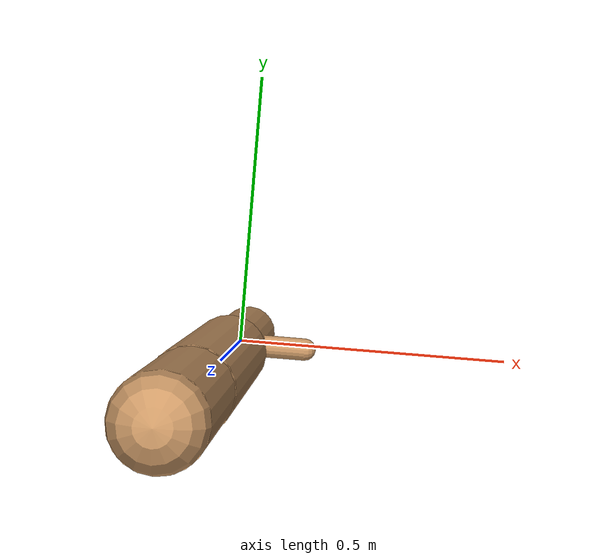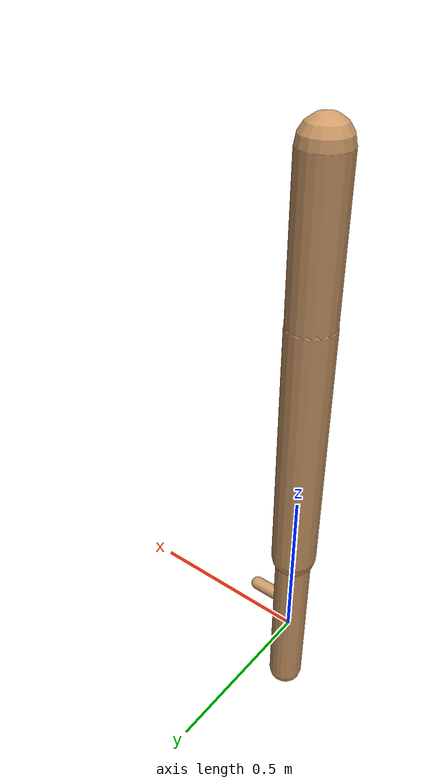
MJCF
<mujoco model="walker2d">
  <compiler angle="degree" coordinate="global" inertiafromgeom="true" />
  <default>
    <joint armature="0.01" damping=".1" limited="true" />
    <geom conaffinity="0" condim="3" contype="1" density="1000" friction="0.8 .1 .1" rgba="0.8 0.6 .4 1" />
  </default>
  <option integrator="RK4" timestep="0.002" />
  <worldbody>

    <body name="torso" pos="0 0 0.6212576965075839">
      <joint armature="0" axis="1 0 0" damping="0" limited="false" name="ignorex" pos="0 0 0" stiffness="0" type="slide" />
      <joint armature="0" axis="0 0 1" damping="0" limited="false" name="ignorez" pos="0 0 0" ref="1.25" stiffness="0" type="slide" />
      <joint armature="0" axis="0 1 0" damping="0" limited="false" name="ignorey" pos="0 0 0" stiffness="0" type="hinge" />
      <geom fromto="0 0 1.45 0 0 1.05" name="torso_geom" size="0.06415717564314867" type="capsule" />
      <body name="thigh">
        <joint axis="0 -1 0" name="thigh_joint" pos="0 0 1.05" range="-150 0" type="hinge" />
        <geom fromto="0.0 0.0 1.05 0.0 0.0 0.30572003849640755" name="thigh_geom" size="0.06545822196951774" type="capsule" />
        <body name="leg" pos="0.0 0.0 -0.2942799615035924">
          <joint axis="0 -1 0" name="leg_joint" pos="0 0 0.6" range="-150 0" type="hinge" />
          <geom fromto="0.0 0.0 0.6 0.0 0.0 -0.22697773500399152" name="leg_geom" size="0.05236657757561419" type="capsule" />
          <body name="foot" pos="0.0 0.0 -0.3269777350039915">
            <joint axis="0 -1 0" name="foot_joint" pos="0 0 0.1" range="-45 45" type="hinge" />
            <geom fromto="0.0 0.0 0.1 0.1251220279939573 0.0 0.1" name="foot_geom" size="0.020323541098823172" type="capsule" />
          </body>
        </body>
      </body>

      <body name="thigh_left">
        <joint axis="0 -1 0" name="thigh_left_joint" pos="0 0 1.05" range="-150 0" type="hinge" />
        <geom fromto="0.0 0.0 1.05 0.0 0.0 0.30572003849640755" name="thigh_left_geom" rgba=".7 .3 .6 1" size="0.06545822196951774" type="capsule" />
        <body name="leg_left" pos="0.0 0.0 -0.2942799615035924">
          <joint axis="0 -1 0" name="leg_left_joint" pos="0 0 0.6" range="-150 0" type="hinge" />
          <geom fromto="0.0 0.0 0.6 0.0 0.0 -0.22697773500399152" name="leg_left_geom" rgba=".7 .3 .6 1" size="0.05236657757561419" type="capsule" />
          <body name="foot_left" pos="0.0 0.0 -0.3269777350039915">
            <joint axis="0 -1 0" name="foot_left_joint" pos="0 0 0.1" range="-45 45" type="hinge" />
            <geom fromto="0.0 0.0 0.1 0.1251220279939573 0.0 0.1" name="foot_left_geom" rgba=".7 .3 .6 1" size="0.020323541098823172" type="capsule" />
          </body>
        </body>
      </body>
    </body>
  </worldbody>
  <actuator>

    <motor ctrllimited="true" ctrlrange="-1.0 1.0" gear="100" joint="thigh_joint" />
    <motor ctrllimited="true" ctrlrange="-1.0 1.0" gear="100" joint="leg_joint" />
    <motor ctrllimited="true" ctrlrange="-1.0 1.0" gear="100" joint="foot_joint" />
    <motor ctrllimited="true" ctrlrange="-1.0 1.0" gear="100" joint="thigh_left_joint" />
    <motor ctrllimited="true" ctrlrange="-1.0 1.0" gear="100" joint="leg_left_joint" />
    <motor ctrllimited="true" ctrlrange="-1.0 1.0" gear="100" joint="foot_left_joint" />

  </actuator>
</mujoco>
